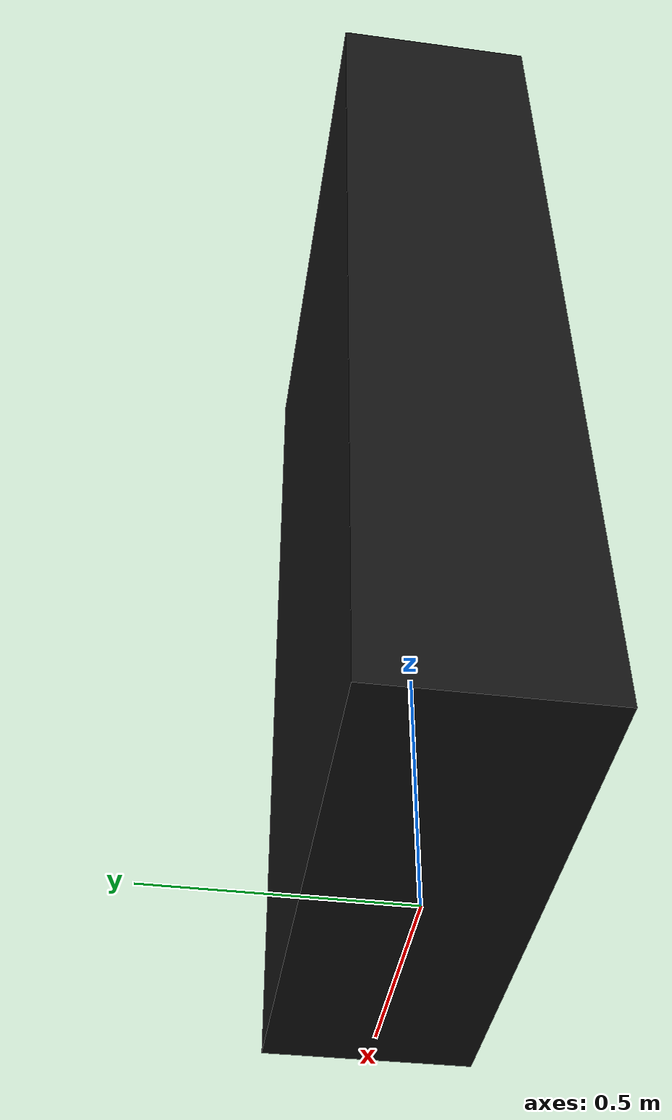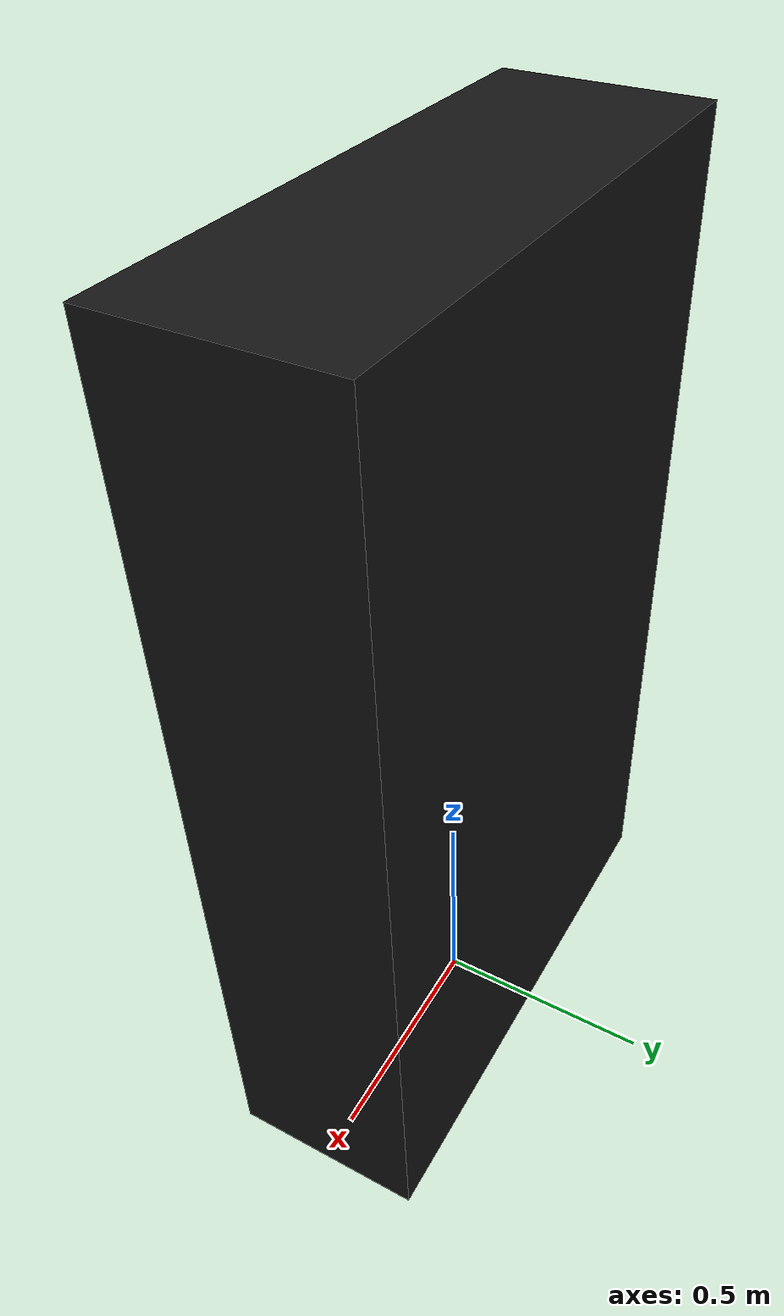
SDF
<?xml version="1.0"?>
<sdf version="1.9">
  <model name="room115_closet115">
    <static>true</static>
    <link name="room115_closet115_link">
      <visual name="room115_closet115_visual">
        <pose>-0.6 -0.215 0 0 0 0</pose>
        <geometry>
          <mesh>
            <uri>model://room115_closet115/meshes/closet115.stl</uri>
          </mesh>
        </geometry>
        <material>
          <ambient>0.08 0.08 0.08 1.0</ambient>
          <diffuse>0.08 0.08 0.08 1.0</diffuse>
          <specular>0.06 0.06 0.06 1.0</specular>
          <emissive>0.0 0.0 0.0 0.0</emissive>
        </material>
      </visual>
      <collision name="room115_closet115_collision">
        <pose>-0.6 -0.215 0 0 0 0</pose>
        <geometry>
          <mesh>
            <uri>model://room115_closet115/meshes/closet115.stl</uri>
          </mesh>
        </geometry>
      </collision>
    </link>
  </model>
</sdf>
